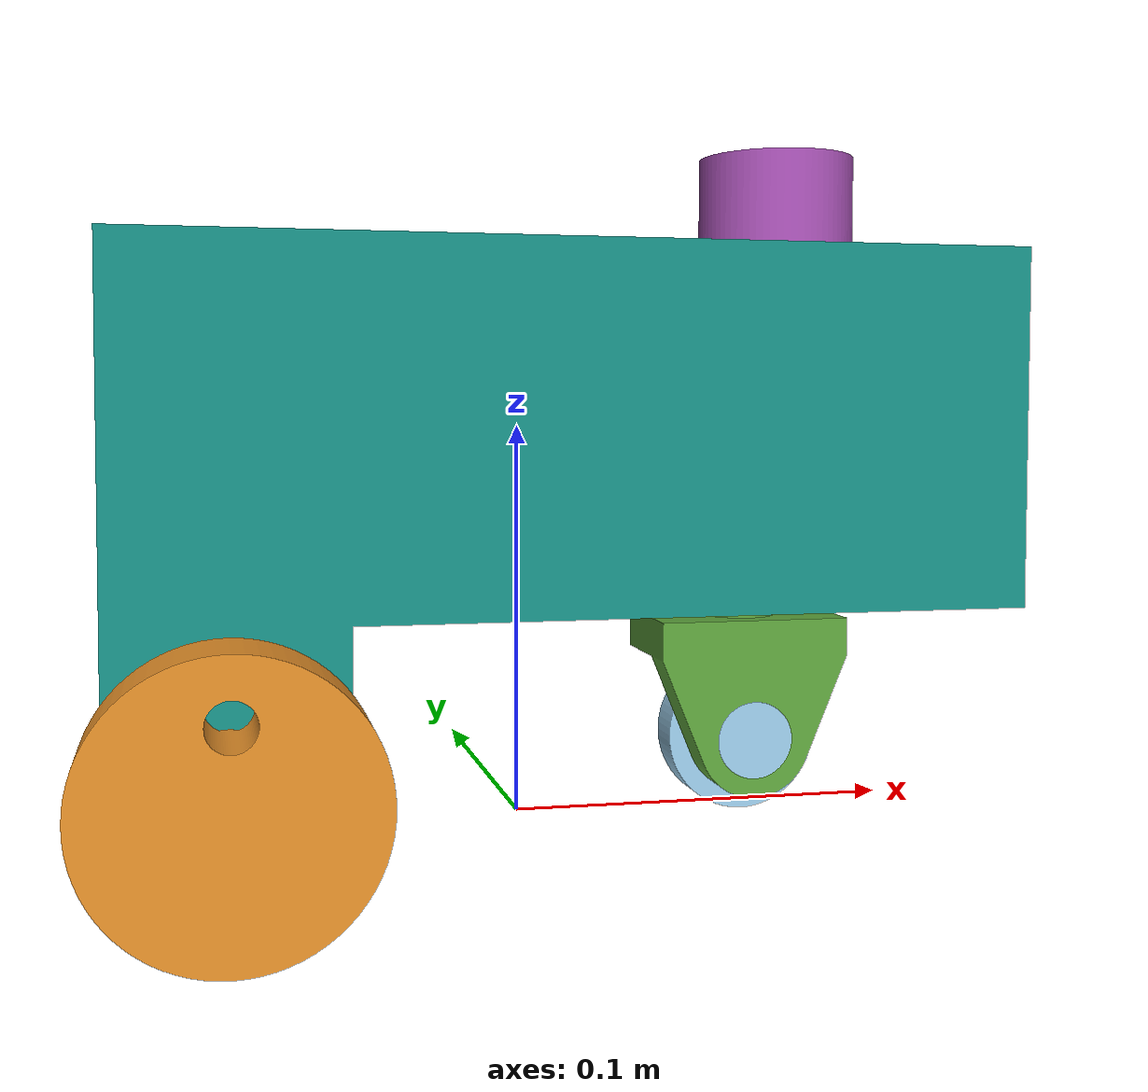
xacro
<?xml version="1.0" ?>
<!-- Generated using onshape-to-robot -->
<!-- Onshape document_id: 76c3835ad13cf92a9fda6be4 -->
<robot name="my_robot" xmlns:xacro="http://www.ros.org/wiki/xacro">

    <xacro:include filename="xacro_properties/xacro_properties.xacro" />
    <xacro:include filename="modules/chassis_ruedas.xacro" />
    <xacro:include filename="modules/camara.xacro" />
    <xacro:include filename="modules/lidar.xacro" />
    <xacro:include filename="gazebo/plugins.xacro" />
    <xacro:include filename="gazebo/properties.xacro" />

</robot>

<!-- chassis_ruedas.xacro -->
<!-- Generated using onshape-to-robot -->
<!-- Onshape document_id: 76c3835ad13cf92a9fda6be4 -->
<robot xmlns:xacro="http://www.ros.org/wiki/xacro">

  <!-- Link base footprint -->
  <link name="base_footprint"/>
  <!-- Joint base footprint -->
  <joint name="base_joint" type="fixed">
      <parent link="base_footprint" />
      <child link="chassis_link" />
      <origin xyz="0 0 0.06" rpy="0 0 0" />
  </joint>

  <!-- Link chassis_1 -->
  <link name="chassis_link">
    <inertial>
      <origin xyz="-0.00403018 0 0.0367476" rpy="0 0 0"/>
      <mass value="6.82331"/>
      <inertia ixx="0.018385" ixy="0" ixz="-0.00165202" iyy="0.0284116" iyz="0" izz="0.0369286"/>
    </inertial>
    <!-- Part chassis_1 -->
    <visual>
      <origin xyz="0 0 0" rpy="0 -0 0"/>
      <geometry>
        <mesh filename="package://my_robot_description/assets/chassis_1.stl"/>
      </geometry>
      <material name="chassis_1_material">
        <color rgba="0.0941176 0.580392 0.545098 1"/>
      </material>
    </visual>
    <collision>
      <origin xyz="0 0 0" rpy="0 -0 0"/>
      <geometry>
        <mesh filename="package://my_robot_description/assets/chassis_1.stl"/>
      </geometry>
    </collision>
  </link>
  <!-- Link rueda_izquierda -->
  <link name="rueda_izquierda_link">
    <inertial>
      <origin xyz="-0 -0.000492463 -0.0444186" rpy="0 0 0"/>
      <mass value="0.181356"/>
      <inertia ixx="6.71807e-05" ixy="0" ixz="0" iyy="6.91159e-05" iyz="-4.98481e-07" izz="6.8024e-05"/>
    </inertial>
    <!-- Part rueda_izquierda -->
    <visual>
      <origin xyz="0 0 -0.06" rpy="-1.5708 -0 0"/>
      <geometry>
        <mesh filename="package://my_robot_description/assets/rueda_izquierda.stl"/>
      </geometry>
      <material name="rueda_izquierda_material">
        <color rgba="0.909804 0.572549 0.164706 1"/>
      </material>
    </visual>
    <collision>
      <origin xyz="0 0 -0.06" rpy="-1.5708 -0 0"/>
      <geometry>
        <mesh filename="package://my_robot_description/assets/rueda_izquierda.stl"/>
      </geometry>
    </collision>
  </link>
  <!-- Joint from chassis_1 to rueda_izquierda -->
  <joint name="rueda_izquierda_joint" type="continuous">
    <origin xyz="-0.075 0.045 -0.03" rpy="1.5708 -0 0"/>
    <parent link="chassis_link"/>
    <child link="rueda_izquierda_link"/>
    <axis xyz="0 0 -1"/>
    <limit effort="100" velocity="100"/>
  </joint>
  <!-- Link rueda_derecha -->
  <link name="rueda_derecha_link">
    <inertial>
      <origin xyz="0 0.000384212 -0.0444186" rpy="0 0 0"/>
      <mass value="0.182369"/>
      <inertia ixx="6.83175e-05" ixy="0" ixz="0" iyy="6.95021e-05" iyz="3.9108e-07" izz="6.91655e-05"/>
    </inertial>
    <!-- Part rueda_derecha -->
    <visual>
      <origin xyz="0 0 -0.04" rpy="1.5708 -0 0"/>
      <geometry>
        <mesh filename="package://my_robot_description/assets/rueda_derecha.stl"/>
      </geometry>
      <material name="rueda_derecha_material">
        <color rgba="0.909804 0.572549 0.164706 1"/>
      </material>
    </visual>
    <collision>
      <origin xyz="0 0 -0.04" rpy="1.5708 -0 0"/>
      <geometry>
        <mesh filename="package://my_robot_description/assets/rueda_derecha.stl"/>
      </geometry>
    </collision>
  </link>
  <!-- Joint from chassis_1 to rueda_derecha -->
  <joint name="rueda_derecha_joint" type="continuous">
    <origin xyz="-0.075 -0.045 -0.03" rpy="-1.5708 -0 0"/>
    <parent link="chassis_link"/>
    <child link="rueda_derecha_link"/>
    <axis xyz="0 0 1"/>
    <limit effort="100" velocity="100"/>
  </joint>
  <!-- Link marco_rueda_loca -->
  <link name="marco_rueda_loca_link">
    <inertial>
      <origin xyz="0 -0.0030182 -0.0273013" rpy="0 0 0"/>
      <mass value="0.0823063"/>
      <inertia ixx="2.01374e-05" ixy="0" ixz="0" iyy="2.74528e-05" iyz="-3.86711e-06" izz="1.81214e-05"/>
    </inertial>
    <!-- Part marco_rueda_loca -->
    <visual>
      <origin xyz="0 -0 -0.03" rpy="0 -0 0"/>
      <geometry>
        <mesh filename="package://my_robot_description/assets/marco_rueda_loca.stl"/>
      </geometry>
      <material name="marco_rueda_loca_material">
        <color rgba="0.372549 0.654902 0.239216 1"/>
      </material>
    </visual>
    <collision>
      <origin xyz="0 -0 -0.03" rpy="0 -0 0"/>
      <geometry>
        <mesh filename="package://my_robot_description/assets/marco_rueda_loca.stl"/>
      </geometry>
    </collision>
  </link>
  <!-- Link rueda_loca -->
  <link name="rueda_loca_link">
    <inertial>
      <origin xyz="-0 0 -0.013" rpy="0 0 0"/>
      <mass value="0.0424115"/>
      <inertia ixx="4.63699e-06" ixy="0" ixz="0" iyy="4.63699e-06" iyz="0" izz="7.20995e-06"/>
    </inertial>
    <!-- Part rueda_loca -->
    <visual>
      <origin xyz="0 0 -0.02" rpy="-1.5708 -0 0"/>
      <geometry>
        <mesh filename="package://my_robot_description/assets/rueda_loca.stl"/>
      </geometry>
      <material name="rueda_loca_material">
        <color rgba="0.615686 0.811765 0.929412 1"/>
      </material>
    </visual>
    <collision>
      <origin xyz="0 0 -0.02" rpy="-1.5708 -0 0"/>
      <geometry>
        <mesh filename="package://my_robot_description/assets/rueda_loca.stl"/>
      </geometry>
    </collision>
  </link>
  <!-- Joint from marco_rueda_loca to rueda_loca -->
  <joint name="rueda_loca_joint" type="continuous">
    <origin xyz="0 -0.015 -0.0512476" rpy="1.5708 -0 -0"/>
    <parent link="marco_rueda_loca_link"/>
    <child link="rueda_loca_link"/>
    <axis xyz="0 0 -1"/>
    <limit effort="100" velocity="100"/>
  </joint>
  <!-- Joint from chassis_1 to marco_rueda_loca -->
  <joint name="marco_rueda_joint" type="fixed">
    <origin xyz="0.06 0 0.01" rpy="0 -0 0"/>
    <parent link="chassis_link"/>
    <child link="marco_rueda_loca_link"/>
    <axis xyz="0 0 1"/>
    <limit effort="100" velocity="100"/>
  </joint>

</robot>

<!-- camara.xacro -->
<!-- Generated using onshape-to-robot -->
<!-- Onshape document_id: 76c3835ad13cf92a9fda6be4 -->
<robot xmlns:xacro="http://www.ros.org/wiki/xacro">

  <!-- Link camara -->
  <link name="camara_mount_link">
    <inertial>
      <origin xyz="0 -0 -0.0119231" rpy="0 0 0"/>
      <mass value="0.03679"/>
      <inertia ixx="3.37786e-06" ixy="0" ixz="0" iyy="3.37786e-06" iyz="0" izz="4.57517e-06"/>
    </inertial>
    <!-- Part camara -->
    <visual>
      <origin xyz="0 0 -0.01" rpy="1.5708 1.5708 0"/>
      <geometry>
        <mesh filename="package://my_robot_description/assets/camara.stl"/>
      </geometry>
      <material name="camara_material">
        <color rgba="0.615686 0.811765 0.929412 1"/>
      </material>
    </visual>
    <collision>
      <origin xyz="0 0 -0.01" rpy="1.5708 1.5708 0"/>
      <geometry>
        <mesh filename="package://my_robot_description/assets/camara.stl"/>
      </geometry>
    </collision>
  </link>
  <!-- Joint from chassis_1 to camara -->
  <joint name="camara_mount_joint" type="fixed">
    <origin xyz="0.09 0 0.05" rpy="0 0 0"/>
    <parent link="chassis_link"/>
    <child link="camara_mount_link"/>
    <axis xyz="0 0 1"/>
    <limit effort="100" velocity="100"/>
  </joint>

  <link name="camera_optical_link">
  </link>

  <joint name="camera_optical_joint" type="fixed">
      <!-- these values have to be these values otherwise the gazebo camera
          image won't be aligned properly with the frame it is supposedly
          originating from -->
      <origin xyz="0 0 0" rpy="${-pi/2} 0 ${-pi/2}"/>
      <parent link="camara_mount_link"/>
      <child link="camera_optical_link"/>
  </joint>

</robot>

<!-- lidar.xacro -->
<!-- Generated using onshape-to-robot -->
<!-- Onshape document_id: 76c3835ad13cf92a9fda6be4 -->
<robot xmlns:xacro="http://www.ros.org/wiki/xacro">

  <!-- Link lidar_f -->
  <link name="lidar_link">
    <inertial>
      <origin xyz="-0 4.7477e-05 -0.00585714" rpy="0 0 0"/>
      <mass value="0.0962113"/>
      <inertia ixx="1.71304e-05" ixy="0" ixz="0" iyy="1.71686e-05" iyz="4.1763e-08" izz="2.06318e-05"/>
    </inertial>
    <!-- Part lidar_f -->
    <visual>
      <origin xyz="0 -0 0.01" rpy="3.14159 -0 0"/>
      <geometry>
        <mesh filename="package://my_robot_description/assets/lidar_f.stl"/>
      </geometry>
      <material name="lidar_f_material">
        <color rgba="0.682353 0.333333 0.737255 1"/>
      </material>
    </visual>
    <collision>
      <origin xyz="0 -0 0.01" rpy="3.14159 -0 0"/>
      <geometry>
        <mesh filename="package://my_robot_description/assets/lidar_f.stl"/>
      </geometry>
    </collision>
  </link>
  <!-- Joint from chassis_1 to lidar_f -->
  <joint name="lidar_joint" type="fixed">
    <origin xyz="0.07 0 0.09" rpy="3.14159 -0 0"/>
    <parent link="chassis_link"/>
    <child link="lidar_link"/>
    <axis xyz="0 0 1"/>
    <limit effort="100" velocity="100"/>
  </joint>

</robot>
